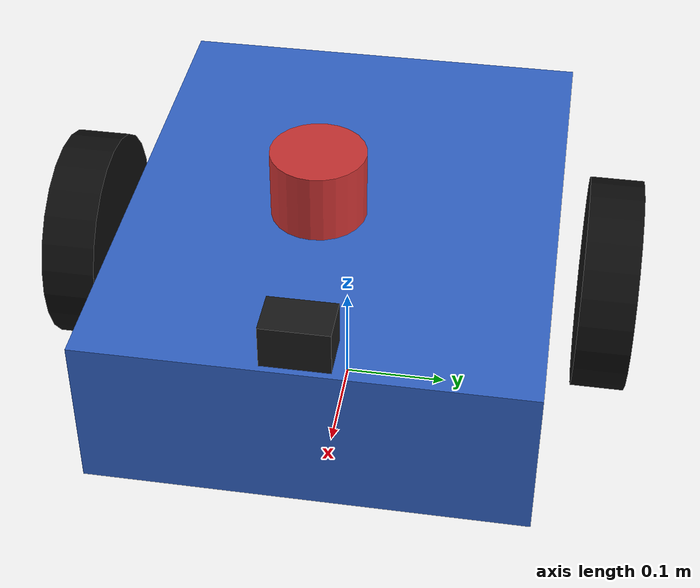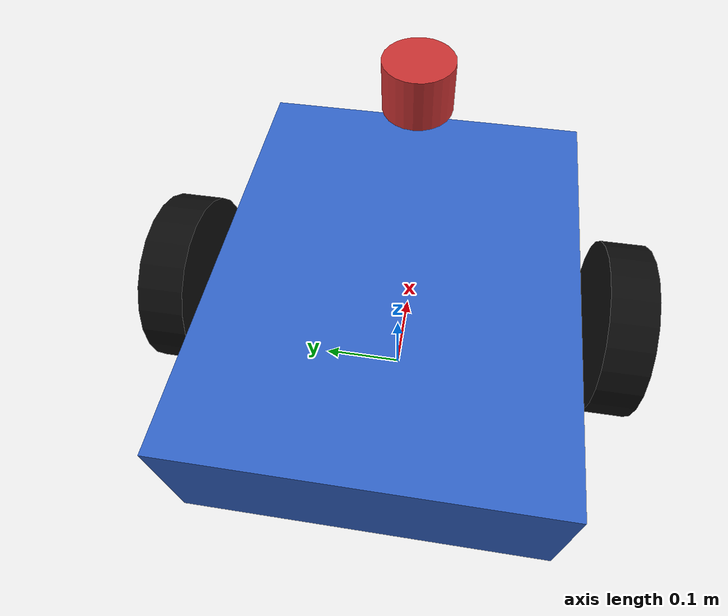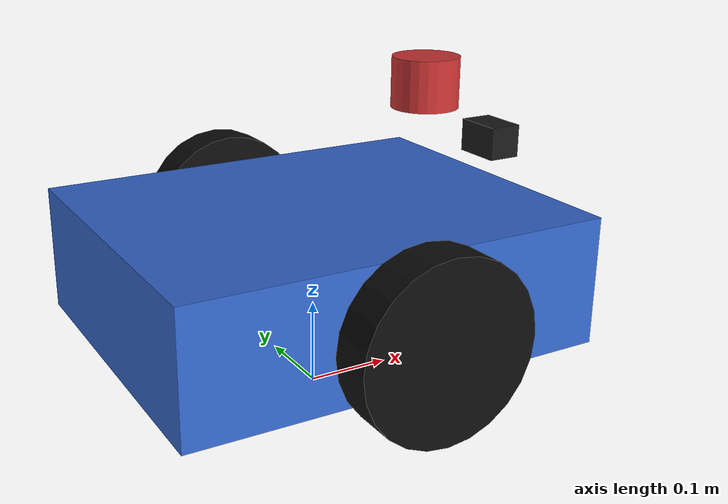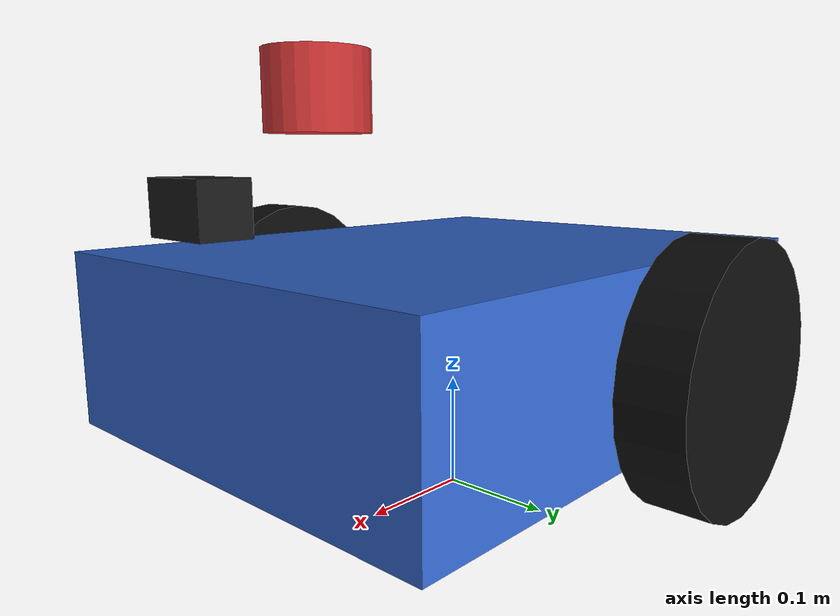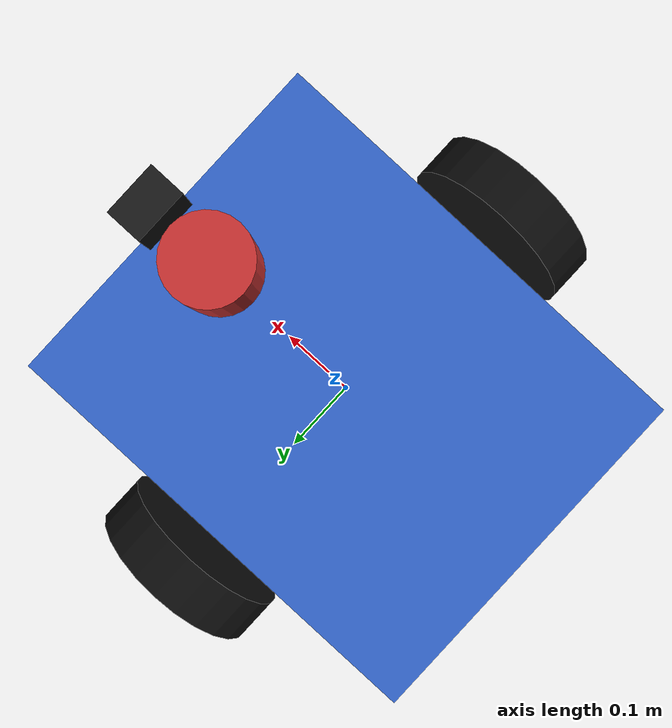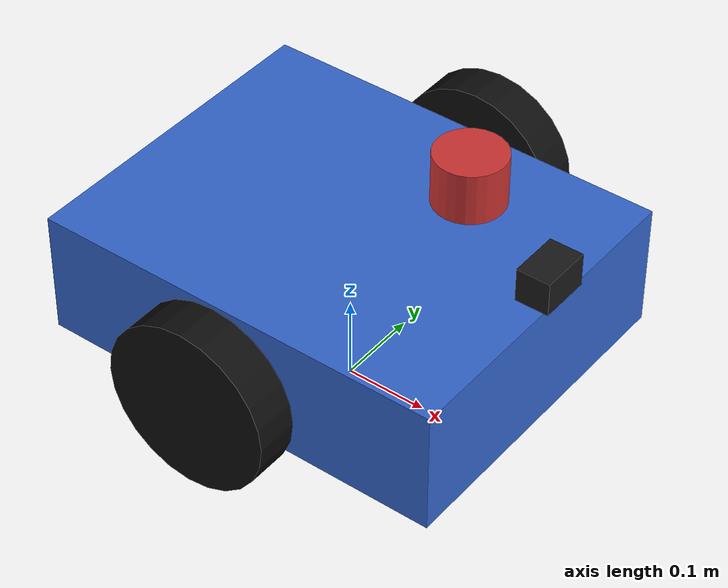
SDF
<?xml version="1.0" ?>
<sdf version="1.7">
  <model name="rover">
    <pose>0 0 0.15 0 0 0</pose>

    <!-- ============ 底盘 (base_link) ============ -->
    <link name="base_link">
      <inertial>
        <mass>15.0</mass>
        <inertia>
          <ixx>0.12</ixx><ixy>0</ixy><ixz>0</ixz>
          <iyy>0.20</iyy><iyz>0</iyz>
          <izz>0.28</izz>
        </inertia>
      </inertial>
      <visual name="visual">
        <geometry><box><size>0.50 0.40 0.15</size></box></geometry>
        <material>
          <ambient>0.2 0.4 0.8 1</ambient>
          <diffuse>0.2 0.4 0.8 1</diffuse>
          <specular>0.3 0.3 0.3 1</specular>
        </material>
      </visual>
      <collision name="collision">
        <geometry><box><size>0.50 0.40 0.15</size></box></geometry>
      </collision>
      <sensor name="imu" type="imu">
        <topic>/imu/data</topic>
        <update_rate>50</update_rate>
        <pose>0 0 0.05 0 0 0</pose>
        <imu>
          <angular_velocity>
            <x><noise type="gaussian"><mean>0.0</mean><stddev>0.0002</stddev></noise></x>
            <y><noise type="gaussian"><mean>0.0</mean><stddev>0.0002</stddev></noise></y>
            <z><noise type="gaussian"><mean>0.0</mean><stddev>0.0002</stddev></noise></z>
          </angular_velocity>
          <linear_acceleration>
            <x><noise type="gaussian"><mean>0.0</mean><stddev>0.001</stddev></noise></x>
            <y><noise type="gaussian"><mean>0.0</mean><stddev>0.001</stddev></noise></y>
            <z><noise type="gaussian"><mean>0.0</mean><stddev>0.001</stddev></noise></z>
          </linear_acceleration>
        </imu>
        <always_on>true</always_on>
      </sensor>
    </link>

    <!-- ============ 左驱动轮 ============ -->
    <link name="left_wheel">
      <pose>0.0 0.25 0.0 1.5708 0 0</pose>
      <inertial>
        <mass>1.0</mass>
        <inertia>
          <ixx>0.005</ixx><ixy>0</ixy><ixz>0</ixz>
          <iyy>0.005</iyy><iyz>0</iyz>
          <izz>0.008</izz>
        </inertia>
      </inertial>
      <visual name="visual">
        <geometry><cylinder><radius>0.10</radius><length>0.05</length></cylinder></geometry>
        <material><ambient>0.1 0.1 0.1 1</ambient><diffuse>0.05 0.05 0.05 1</diffuse></material>
      </visual>
      <collision name="collision">
        <geometry><cylinder><radius>0.10</radius><length>0.05</length></cylinder></geometry>
        <surface>
          <friction>
            <ode><mu>50</mu><mu2>50</mu2></ode>
          </friction>
        </surface>
      </collision>
    </link>

    <joint name="left_wheel_joint" type="revolute">
      <parent>base_link</parent>
      <child>left_wheel</child>
      <axis>
        <xyz>0 0 1</xyz>
        <dynamics><damping>0.1</damping></dynamics>
      </axis>
    </joint>

    <!-- ============ 右驱动轮 ============ -->
    <link name="right_wheel">
      <pose>0.0 -0.25 0.0 1.5708 0 0</pose>
      <inertial>
        <mass>1.0</mass>
        <inertia>
          <ixx>0.005</ixx><ixy>0</ixy><ixz>0</ixz>
          <iyy>0.005</iyy><iyz>0</iyz>
          <izz>0.008</izz>
        </inertia>
      </inertial>
      <visual name="visual">
        <geometry><cylinder><radius>0.10</radius><length>0.05</length></cylinder></geometry>
        <material><ambient>0.1 0.1 0.1 1</ambient><diffuse>0.05 0.05 0.05 1</diffuse></material>
      </visual>
      <collision name="collision">
        <geometry><cylinder><radius>0.10</radius><length>0.05</length></cylinder></geometry>
        <surface>
          <friction>
            <ode><mu>50</mu><mu2>50</mu2></ode>
          </friction>
        </surface>
      </collision>
    </link>

    <joint name="right_wheel_joint" type="revolute">
      <parent>base_link</parent>
      <child>right_wheel</child>
      <axis>
        <xyz>0 0 1</xyz>
        <dynamics><damping>0.1</damping></dynamics>
      </axis>
    </joint>

    <!-- ============ 后万向轮 (caster, 球形无摩擦) ============ -->
    <link name="caster_wheel">
      <pose>-0.20 0.0 -0.02 0 0 0</pose>
      <inertial>
        <mass>0.3</mass>
        <inertia>
          <ixx>0.0003</ixx><ixy>0</ixy><ixz>0</ixz>
          <iyy>0.0003</iyy><iyz>0</iyz>
          <izz>0.0003</izz>
        </inertia>
      </inertial>
      <visual name="visual">
        <geometry><sphere><radius>0.05</radius></sphere></geometry>
        <material><ambient>0.3 0.3 0.3 1</ambient><diffuse>0.2 0.2 0.2 1</diffuse></material>
      </visual>
      <collision name="collision">
        <geometry><sphere><radius>0.05</radius></sphere></geometry>
        <surface>
          <friction>
            <ode><mu>0.01</mu><mu2>0.01</mu2></ode>
          </friction>
        </surface>
      </collision>
    </link>
    <joint name="caster_joint" type="ball">
      <parent>base_link</parent>
      <child>caster_wheel</child>
    </joint>

    <!-- ============ LiDAR 传感器 (模拟 Livox Mid-360) ============ -->
    <link name="livox_frame">
      <pose>0.15 0.0 0.20 0 0 0</pose>
      <inertial>
        <mass>0.2</mass>
        <inertia>
          <ixx>0.0001</ixx><ixy>0</ixy><ixz>0</ixz>
          <iyy>0.0001</iyy><iyz>0</iyz>
          <izz>0.0001</izz>
        </inertia>
      </inertial>
      <visual name="visual">
        <geometry><cylinder><radius>0.04</radius><length>0.06</length></cylinder></geometry>
        <material><ambient>0.8 0.2 0.2 1</ambient><diffuse>0.8 0.2 0.2 1</diffuse></material>
      </visual>
      <sensor name="livox_lidar" type="gpu_lidar">
        <topic>/livox/scan</topic>
        <update_rate>10</update_rate>
        <ray>
          <scan>
            <horizontal>
              <samples>720</samples>
              <resolution>1</resolution>
              <min_angle>-3.14159</min_angle>
              <max_angle>3.14159</max_angle>
            </horizontal>
            <vertical>
              <samples>16</samples>
              <resolution>1</resolution>
              <min_angle>-0.1222</min_angle>
              <max_angle>0.1222</max_angle>
            </vertical>
          </scan>
          <range>
            <min>0.2</min>
            <max>30.0</max>
            <resolution>0.02</resolution>
          </range>
          <noise>
            <type>gaussian</type>
            <mean>0.0</mean>
            <stddev>0.005</stddev>
          </noise>
        </ray>
        <always_on>true</always_on>
        <visualize>false</visualize>
      </sensor>
    </link>
    <joint name="livox_joint" type="fixed">
      <parent>base_link</parent>
      <child>livox_frame</child>
    </joint>

    <!-- ============ 相机 (工业相机) ============ -->
    <link name="camera_frame">
      <pose>0.25 0.0 0.12 0 0 0</pose>
      <inertial>
        <mass>0.2</mass>
        <inertia>
          <ixx>0.0001</ixx><ixy>0</ixy><ixz>0</ixz>
          <iyy>0.0001</iyy><iyz>0</iyz>
          <izz>0.0001</izz>
        </inertia>
      </inertial>
      <visual name="visual">
        <geometry><box><size>0.04 0.06 0.04</size></box></geometry>
        <material><ambient>0.2 0.2 0.2 1</ambient><diffuse>0.1 0.1 0.1 1</diffuse></material>
      </visual>
      <sensor name="camera" type="camera">
        <topic>/camera/image</topic>
        <update_rate>10</update_rate>
        <camera>
          <horizontal_fov>1.5708</horizontal_fov>
          <image>
            <width>640</width>
            <height>480</height>
            <format>R8G8B8</format>
          </image>
          <clip>
            <near>0.1</near>
            <far>50</far>
          </clip>
          <noise>
            <type>gaussian</type>
            <mean>0.0</mean>
            <stddev>0.005</stddev>
          </noise>
        </camera>
        <always_on>true</always_on>
        <visualize>false</visualize>
      </sensor>
    </link>
    <joint name="camera_joint" type="fixed">
      <parent>base_link</parent>
      <child>camera_frame</child>
    </joint>

    <!-- ============ IMU (在 base_link 内) ============ -->
    <!-- IMU 传感器已移入 base_link, 见上方 base_link 定义 -->

    <!-- ============ 差速驱动插件 ============ -->
    <plugin filename="ignition-gazebo-diff-drive-system" name="ignition::gazebo::systems::DiffDrive">
      <left_joint>left_wheel_joint</left_joint>
      <right_joint>right_wheel_joint</right_joint>
      <wheel_separation>0.50</wheel_separation>
      <wheel_radius>0.10</wheel_radius>
      <max_linear_acceleration>1.0</max_linear_acceleration>
      <max_angular_acceleration>2.0</max_angular_acceleration>
      <topic>/cmd_vel</topic>
      <odom_topic>/odom</odom_topic>
      <tf_topic>/tf</tf_topic>
      <frame_id>odom</frame_id>
      <child_frame_id>base_link</child_frame_id>
    </plugin>

    <!-- ============ 碰撞接触插件 ============ -->
    <plugin filename="ignition-gazebo-contact-system" name="ignition::gazebo::systems::Contact"/>

  </model>
</sdf>
